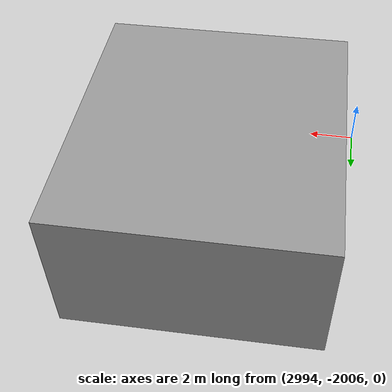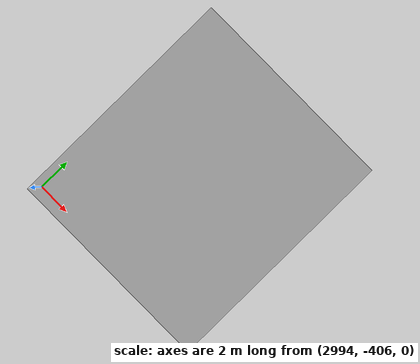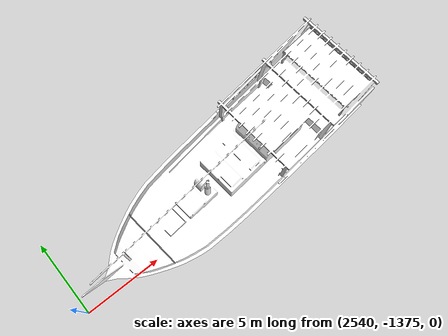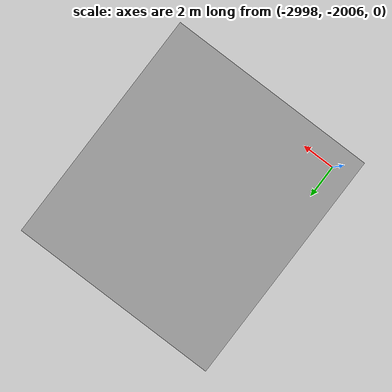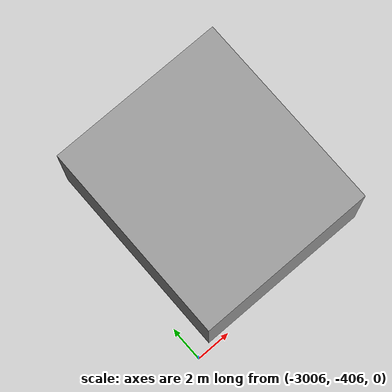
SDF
<sdf version="1.7">
 <world name="default">
  <physics name="default_physics" default="0" type="ode">
   <ode>
    <solver>
     <type>quick</type>
     <iters>10</iters>
     <sor>1.3</sor>
     <use_dynamic_moi_rescaling>0</use_dynamic_moi_rescaling>
    </solver>
    <constraints>
     <cfm>0</cfm>
     <erp>0.2</erp>
     <contact_max_correcting_vel>100</contact_max_correcting_vel>
     <contact_surface_layer>0.001</contact_surface_layer>
    </constraints>
   </ode>
   <max_step_size>0.004</max_step_size>
   <real_time_factor>1</real_time_factor>
   <real_time_update_rate>250</real_time_update_rate>
  </physics>
  <light name="sun" type="directional">
   <pose>0 0 10 0 -0 0</pose>
   <diffuse>0.8 0.8 0.8 1</diffuse>
   <specular>0.2 0.2 0.2 1</specular>
   <attenuation>
    <range>1000</range>
    <constant>0.9</constant>
    <linear>0.01</linear>
    <quadratic>0.001</quadratic>
   </attenuation>
   <direction>-0.5 0.1 -0.9</direction>
   <spot><inner_angle>0</inner_angle><outer_angle>0</outer_angle><falloff>0</falloff></spot>
  </light>
  <model name="ground_plane">
   <static>1</static>
   <link name="link">
    <collision name="collision">
     <geometry><plane><normal>0 0 1</normal><size>100 100</size></plane></geometry>
     <surface>
      <contact><collide_bitmask>65535</collide_bitmask></contact>
      <friction><ode><mu>100</mu><mu2>50</mu2></ode></friction>
     </surface>
    </collision>
    <visual name="visual">
     <cast_shadows>0</cast_shadows>
     <geometry><plane><normal>0 0 1</normal><size>100 100</size></plane></geometry>
     <material>
      <script><uri>file://media/materials/scripts/gazebo.material</uri><name>Gazebo/Grey</name></script>
     </material>
    </visual>
   </link>
  </model>
  <gravity>0 0 -9.8066</gravity>
  <magnetic_field>6e-06 2.3e-05 -4.2e-05</magnetic_field>
  <atmosphere type="adiabatic"/>
  <scene><ambient>0.4 0.4 0.4 1</ambient><background>0.7 0.7 0.7 1</background><shadows>1</shadows></scene>
  <spherical_coordinates>
   <surface_model>EARTH_WGS84</surface_model>
   <latitude_deg>0</latitude_deg>
   <longitude_deg>0</longitude_deg>
   <elevation>0</elevation>
   <heading_deg>0</heading_deg>
  </spherical_coordinates>
  <model name="unit_box">
   <pose>-2992.83 -2000 2.86984 0.001318 -0.000296 -4.9e-05</pose>
   <link name="link">
    <inertial>
     <mass>1</mass>
     <inertia>
      <ixx>0.166667</ixx>
      <ixy>0</ixy>
      <ixz>0</ixz>
      <iyy>0.166667</iyy>
      <iyz>0</iyz>
      <izz>0.166667</izz>
     </inertia>
    </inertial>
    <collision name="collision"><geometry><box><size>10.1425 11.4424 5.75405</size></box></geometry></collision>
    <visual name="visual">
     <geometry><box><size>10.1425 11.4424 5.75405</size></box></geometry>
     <material>
      <script><name>Gazebo/Grey</name><uri>file://media/materials/scripts/gazebo.material</uri></script>
     </material>
    </visual>
   </link>
  </model>
  <model name="unit_box_0">
   <pose>2999.9 -399.412 2.87429 -2.6e-05 0.000515 -5e-06</pose>
   <link name="link">
    <inertial>
     <mass>1</mass>
     <inertia>
      <ixx>0.166667</ixx>
      <ixy>0</ixy>
      <ixz>0</ixz>
      <iyy>0.166667</iyy>
      <iyz>0</iyz>
      <izz>0.166667</izz>
     </inertia>
    </inertial>
    <collision name="collision"><geometry><box><size>10.1425 11.4424 5.75405</size></box></geometry></collision>
    <visual name="visual">
     <geometry><box><size>10.1425 11.4424 5.75405</size></box></geometry>
     <material>
      <script><name>Gazebo/Grey</name><uri>file://media/materials/scripts/gazebo.material</uri></script>
     </material>
    </visual>
   </link>
  </model>
  <model name="unit_box_1">
   <pose>3000 -2000 2.87418 -5.8e-05 -0.000464 -4.5e-05</pose>
   <link name="link">
    <inertial>
     <mass>1</mass>
     <inertia>
      <ixx>0.166667</ixx>
      <ixy>0</ixy>
      <ixz>0</ixz>
      <iyy>0.166667</iyy>
      <iyz>0</iyz>
      <izz>0.166667</izz>
     </inertia>
    </inertial>
    <collision name="collision"><geometry><box><size>10.1425 11.4424 5.75405</size></box></geometry></collision>
    <visual name="visual">
     <geometry><box><size>10.1425 11.4424 5.75405</size></box></geometry>
     <material>
      <script><name>Gazebo/Grey</name><uri>file://media/materials/scripts/gazebo.material</uri></script>
     </material>
    </visual>
   </link>
  </model>
  <model name="unit_box_2">
   <pose>-3000 -400 2.87458 -7e-05 -0.000493 -4e-05</pose>
   <link name="link">
    <inertial>
     <mass>1</mass>
     <inertia>
      <ixx>0.166667</ixx>
      <ixy>0</ixy>
      <ixz>0</ixz>
      <iyy>0.166667</iyy>
      <iyz>0</iyz>
      <izz>0.166667</izz>
     </inertia>
    </inertial>
    <collision name="collision"><geometry><box><size>10.1425 11.4424 5.75405</size></box></geometry></collision>
    <visual name="visual">
     <geometry><box><size>10.1425 11.4424 5.75405</size></box></geometry>
     <material>
      <script><name>Gazebo/Grey</name><uri>file://media/materials/scripts/gazebo.material</uri></script>
     </material>
    </visual>
   </link>
  </model>
  <model name="vessel_d_0">
   <static>0</static>
   <link name="link">
    <enable_wind>1</enable_wind>
    <kinematic>1</kinematic>
    <inertial>
     <mass>3000</mass>
     <inertia><ixx>13000</ixx><ixy>0</ixy><ixz>0</ixz><iyy>125000</iyy><iyz>0</iyz><izz>130000</izz></inertia>
    </inertial>
    <visual name="visual">
     <pose>0 0 0 0 -0 1.5708</pose>
     <geometry><mesh><uri>model://VesselD/meshes/Boat04.dae</uri><scale>0.9 0.9 0.9</scale></mesh></geometry>
     <material>
      <diffuse>1 1 1 1</diffuse>
      <specular>1 1 1 1</specular>
      <script>
       <uri>model://VesselD/materials/scripts</uri>
       <uri>model://VesselD/materials/textures</uri>
       <name>VesselD/tex</name>
      </script>
     </material>
    </visual>
    <collision name="collision">
     <pose>0 0 0 0 -0 1.5708</pose>
     <geometry><mesh><uri>model://VesselD/meshes/Boat04.dae</uri><scale>0.9 0.9 0.9</scale></mesh></geometry>
    </collision>
   </link>
   <pose>1337.14 -816.218 0 0 -0 3.11253</pose>
  </model>
  <model name="vessel_d_1">
   <static>0</static>
   <link name="link">
    <enable_wind>1</enable_wind>
    <kinematic>1</kinematic>
    <inertial>
     <mass>3000</mass>
     <inertia><ixx>13000</ixx><ixy>0</ixy><ixz>0</ixz><iyy>125000</iyy><iyz>0</iyz><izz>130000</izz></inertia>
    </inertial>
    <visual name="visual">
     <pose>0 0 0 0 -0 1.5708</pose>
     <geometry><mesh><uri>model://VesselD/meshes/Boat04.dae</uri><scale>0.9 0.9 0.9</scale></mesh></geometry>
     <material>
      <diffuse>1 1 1 1</diffuse>
      <specular>1 1 1 1</specular>
      <script>
       <uri>model://VesselD/materials/scripts</uri>
       <uri>model://VesselD/materials/textures</uri>
       <name>VesselD/tex</name>
      </script>
     </material>
    </visual>
    <collision name="collision">
     <pose>0 0 0 0 -0 1.5708</pose>
     <geometry><mesh><uri>model://VesselD/meshes/Boat04.dae</uri><scale>0.9 0.9 0.9</scale></mesh></geometry>
    </collision>
   </link>
   <pose>183.013 -1250.55 0 0 -0 3.09301</pose>
  </model>
  <model name="vessel_d_2">
   <static>0</static>
   <link name="link">
    <enable_wind>1</enable_wind>
    <kinematic>1</kinematic>
    <inertial>
     <mass>3000</mass>
     <inertia><ixx>13000</ixx><ixy>0</ixy><ixz>0</ixz><iyy>125000</iyy><iyz>0</iyz><izz>130000</izz></inertia>
    </inertial>
    <visual name="visual">
     <pose>0 0 0 0 -0 1.5708</pose>
     <geometry><mesh><uri>model://VesselD/meshes/Boat04.dae</uri><scale>0.9 0.9 0.9</scale></mesh></geometry>
     <material>
      <diffuse>1 1 1 1</diffuse>
      <specular>1 1 1 1</specular>
      <script>
       <uri>model://VesselD/materials/scripts</uri>
       <uri>model://VesselD/materials/textures</uri>
       <name>VesselD/tex</name>
      </script>
     </material>
    </visual>
    <collision name="collision">
     <pose>0 0 0 0 -0 1.5708</pose>
     <geometry><mesh><uri>model://VesselD/meshes/Boat04.dae</uri><scale>0.9 0.9 0.9</scale></mesh></geometry>
    </collision>
   </link>
   <pose>2550.26 -1373.51 0 0 0 -3.03277</pose>
  </model>
 </world>
</sdf>
